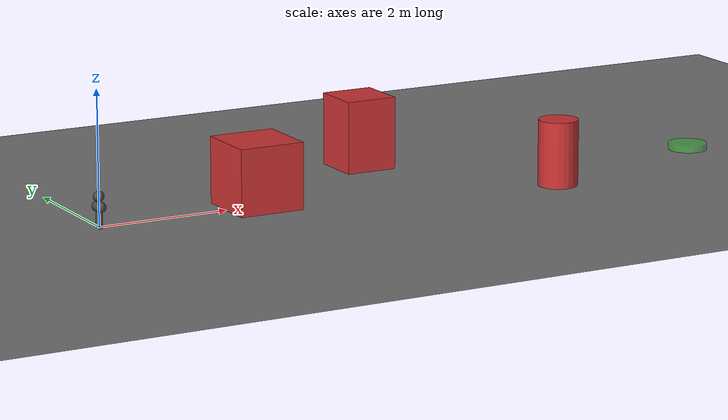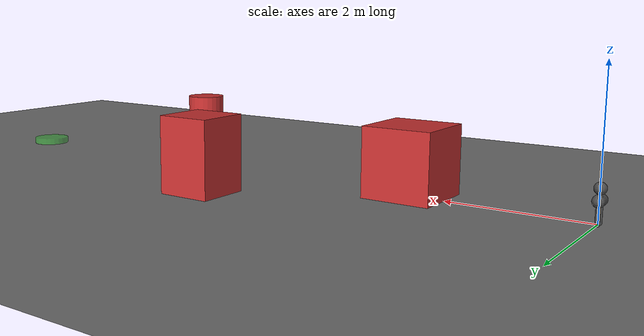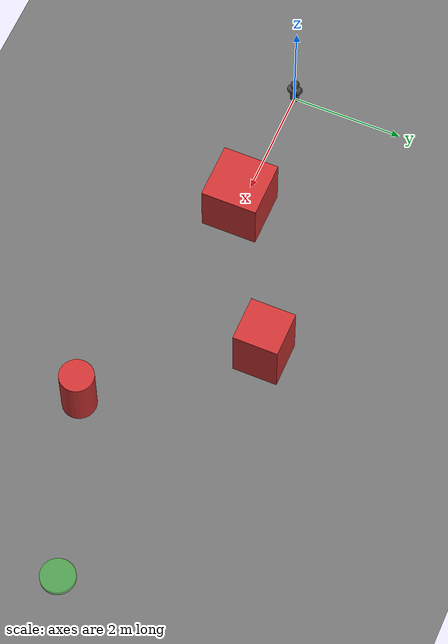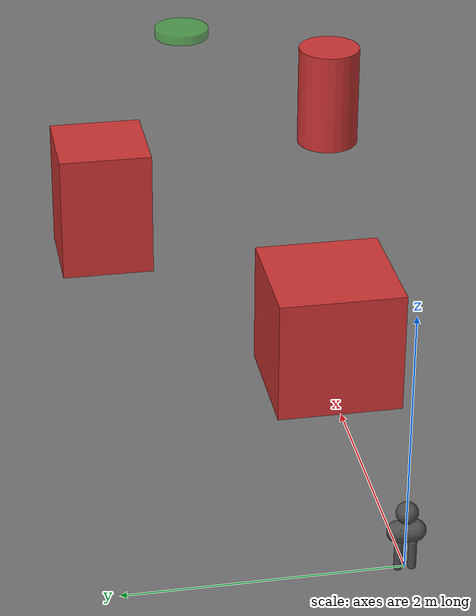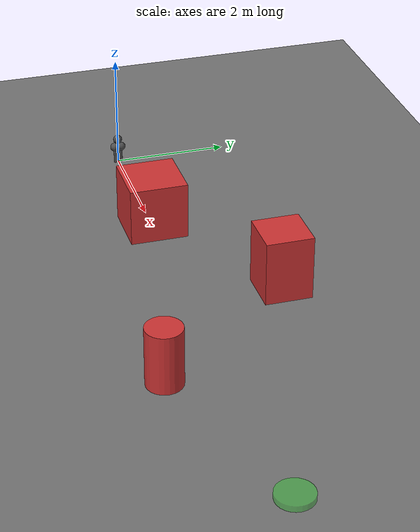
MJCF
<mujoco model="reachy-mini_obstacle_navigation">
  <compiler angle="radian" autolimits="true"/>
  <option timestep="0.001" gravity="0 0 -9.81"/>
  <default><joint armature="0.01" damping="0.1"/><geom condim="4" friction="1.0 0.005 0.0001"/></default>
  <asset>
    <texture name="grid" type="2d" builtin="checker" rgb1="0.4 0.4 0.4" rgb2="0.5 0.5 0.5" width="512" height="512"/>
    <material name="grid_mat" texture="grid" texrepeat="10 10" reflectance="0.1"/>
    <material name="obstacle_mat" rgba="0.8 0.2 0.2 1"/>
    <material name="goal_mat" rgba="0.2 0.8 0.2 0.5"/>
    <material name="robot_mat" rgba="0.3 0.3 0.3 1"/>
  </asset>
  <worldbody>
    <geom name="ground" type="plane" size="20 20 0.1" material="grid_mat"/>
    <light name="top" pos="0 0 10" dir="0 0 -1"/>
    <body name="torso" pos="0 0 0.3">
      <inertial mass="5.0" pos="0 0 0" diaginertia="0.1 0.1 0.1"/>
      <geom name="torso_geom" type="capsule" size="0.08" fromto="0 -0.06 0 0 0.06 0" material="robot_mat"/>
      <body name="head" pos="0 0 0.15"><inertial mass="1" pos="0 0 0" diaginertia="0.02 0.02 0.02"/><geom name="head_geom" type="sphere" size="0.08" material="robot_mat"/></body>
      <body name="left_leg" pos="0 0.05 -0.1"><inertial mass="1" pos="0 0 -0.1" diaginertia="0.01 0.01 0.01"/><joint name="lh" type="hinge" axis="1 0 0" range="-1 1"/><geom name="ll" type="capsule" size="0.03" fromto="0 0 0 0 0 -0.2" material="robot_mat"/></body>
      <body name="right_leg" pos="0 -0.05 -0.1"><inertial mass="1" pos="0 0 -0.1" diaginertia="0.01 0.01 0.01"/><joint name="rh" type="hinge" axis="1 0 0" range="-1 1"/><geom name="rl" type="capsule" size="0.03" fromto="0 0 0 0 0 -0.2" material="robot_mat"/></body>
      <freejoint name="root"/>
    </body>
    <body name="obstacle_1" pos="2.5 0 0.5"><geom name="obs1" type="box" size="0.5 0.5 0.5" material="obstacle_mat"/></body>
    <body name="obstacle_2" pos="5.0 1.5 0.5"><geom name="obs2" type="box" size="0.4 0.4 0.6" material="obstacle_mat"/></body>
    <body name="obstacle_3" pos="7.0 -1.0 0.5"><geom name="obs3" type="cylinder" size="0.3 0.5" material="obstacle_mat"/></body>
    <body name="goal" pos="10.0 0 0.05"><geom name="goal_geom" type="cylinder" size="0.3 0.05" material="goal_mat"/></body>
  </worldbody>
</mujoco>
